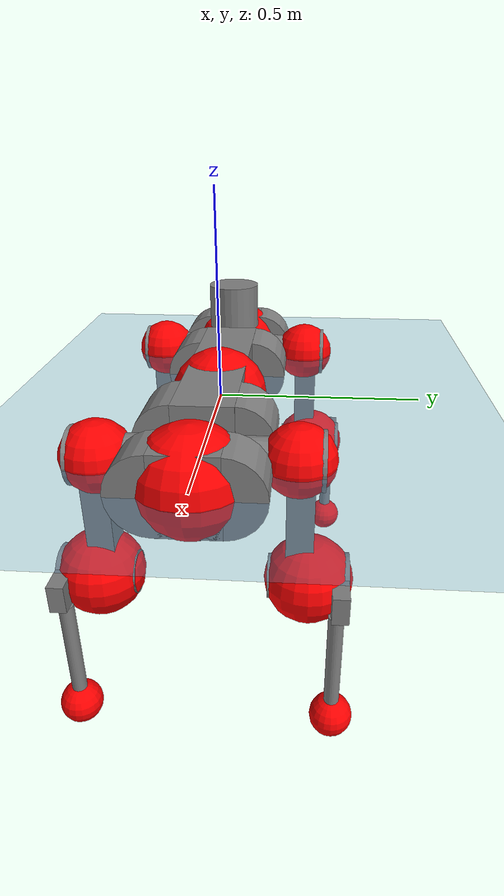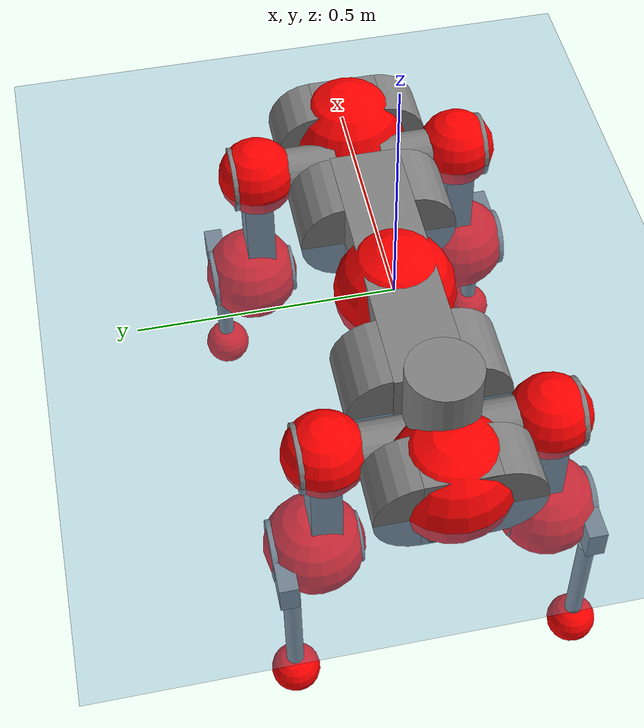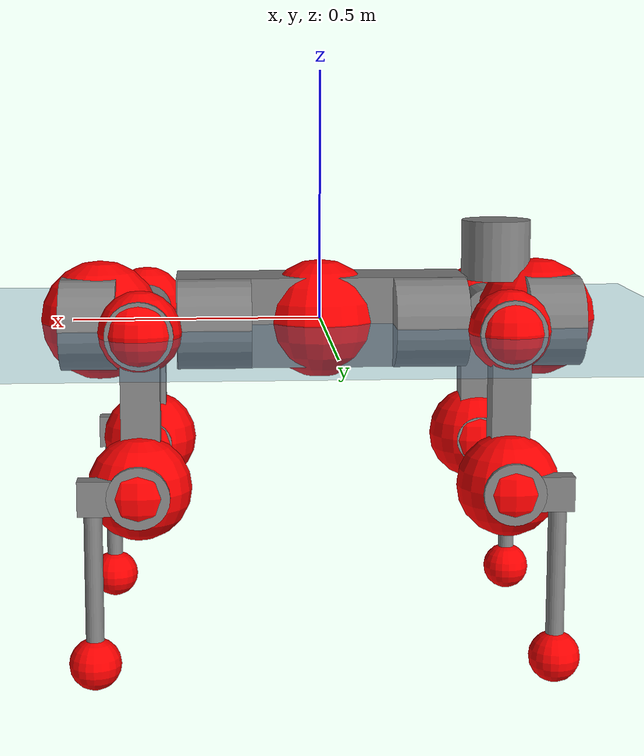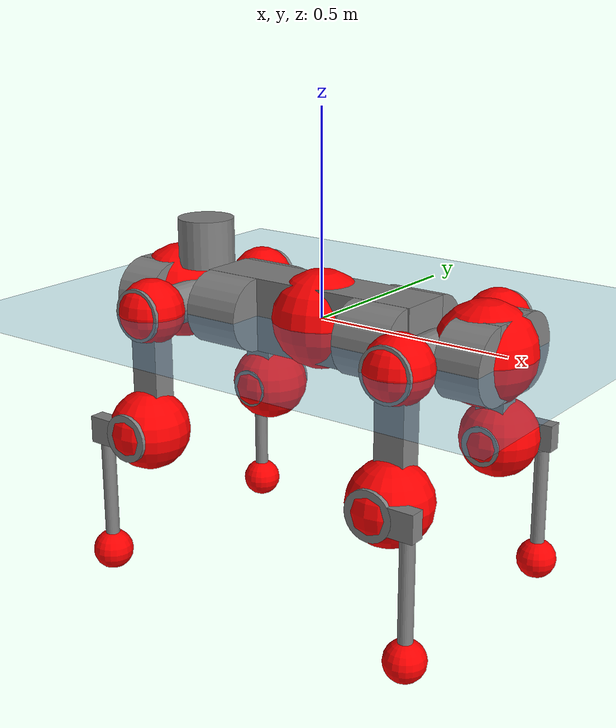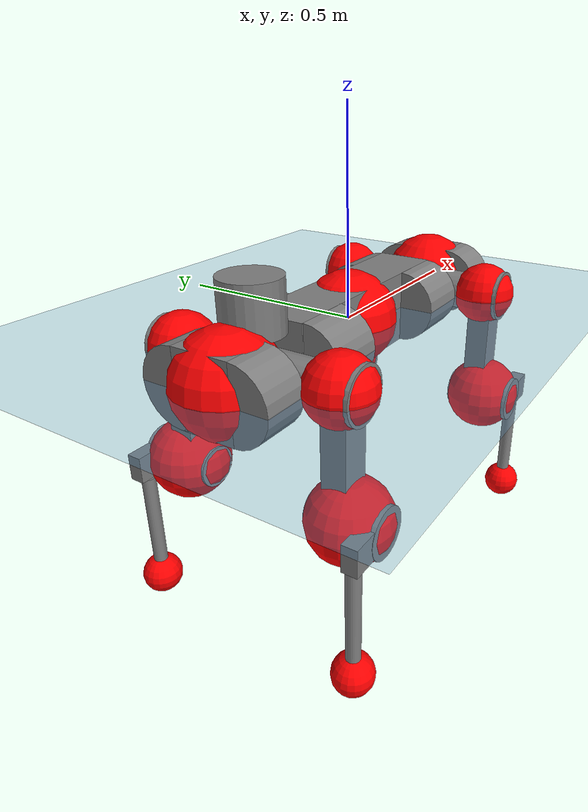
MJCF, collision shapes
<mujoco model="anymal_c">
  <compiler angle="radian" assetdir="assets" balanceinertia="true" inertiafromgeom="false"/>

  <option timestep="0.005" density="1.2" viscosity="2e-05"/>

  <size nkey="1"/>

  <visual>
    <quality shadowsize="8192"/>
    <map shadowclip="0.5"/>
  </visual>

  <default>
    <default class="/">
      <material specular="0" shininess="0.25"/>
      <geom contype="0" conaffinity="0" group="1" solref="-1000 -80"/>
      <site size="0.01 0.005 0.005" group="5"/>
      <general forcelimited="true" forcerange="-80 80" biastype="affine" gainprm="80" biasprm="0 -80 -2"/>
      <default class="anymal_c">
        <joint armature="0.01" damping="0.01" frictionloss="0.1"/>
        <default class="visual">
          <geom type="mesh" group="2"/>
          <default class="visual_zflip"/>
        </default>
        <default class="collision">
          <geom type="cylinder" group="3"/>
          <default class="foot">
            <geom size="0.03 0 0" type="sphere" condim="6" priority="1" friction="0.8 0.02 0.01" solimp="0.015 1 0.03"/>
          </default>
        </default>
      </default>
      <default class="reward_collision_sphere">
        <geom group="5" rgba="1 0 0 1"/>
      </default>
    </default>
  </default>

  <asset>
    <texture type="skybox" colorspace="auto" name="//unnamed_texture_0" builtin="gradient" rgb1="0.95 0.95 0.95" rgb2="0.95 0.95 0.95" width="100" height="600"/>
    <texture type="2d" colorspace="auto" name="texplane" builtin="checker" rgb1="0.345 0.575 0.748" rgb2="0.345 0.575 0.748" markrgb="1 1 1" width="512" height="512"/>
    <texture type="2d" colorspace="linear" name="base" file="base.png"/>
    <texture type="2d" colorspace="linear" name="top_shell" file="top_shell.png"/>
    <texture type="2d" colorspace="linear" name="bottom_shell" file="bottom_shell.png"/>
    <texture type="2d" colorspace="linear" name="remote" file="remote.png"/>
    <texture type="2d" colorspace="linear" name="hatch" file="hatch.png"/>
    <texture type="2d" colorspace="linear" name="handle" file="handle.png"/>
    <texture type="2d" colorspace="linear" name="face" file="face.png"/>
    <texture type="2d" colorspace="linear" name="battery" file="battery.png"/>
    <texture type="2d" colorspace="linear" name="lidar_cage" file="lidar_cage.png"/>
    <texture type="2d" colorspace="linear" name="depth_camera" file="depth_camera.png"/>
    <texture type="2d" colorspace="linear" name="wide_angle_camera" file="wide_angle_camera.png"/>
    <texture type="2d" colorspace="linear" name="lidar" file="lidar.png"/>
    <texture type="2d" colorspace="linear" name="drive" file="drive.png"/>
    <texture type="2d" colorspace="linear" name="hip_l" file="hip_l.png"/>
    <texture type="2d" colorspace="linear" name="shank_l" file="shank_l.png"/>
    <texture type="2d" colorspace="linear" name="foot" file="foot.png"/>
    <texture type="2d" colorspace="linear" name="thigh" file="thigh.png"/>
    <texture type="2d" colorspace="linear" name="shank_r" file="shank_r.png"/>
    <texture type="2d" colorspace="linear" name="hip_r" file="hip_r.png"/>
    <material name="MatPlane" class="/" texture="texplane" texuniform="true" texrepeat="2 2" specular="0.9" shininess="0.5"/>
    <material name="black_plastic" class="/" rgba="0.007 0.007 0.007 1"/>
    <material name="green" class="/" rgba="0.052 0.178 0.033 1"/>
    <material name="red" class="/" rgba="0.178 0.006 0.005 1"/>
    <material name="yellow" class="/" rgba="0.178 0.119 0.006 1"/>
    <material name="lwl" class="/" rgba="0.8 0.8 0.8 1"/>
    <material name="base" class="/" texture="base"/>
    <material name="top_shell" class="/" texture="top_shell"/>
    <material name="bottom_shell" class="/" texture="bottom_shell"/>
    <material name="hip_l" class="/" texture="hip_l"/>
    <material name="thigh" class="/" texture="thigh"/>
    <material name="shank_l" class="/" texture="shank_l"/>
    <material name="foot" class="/" texture="foot"/>
    <material name="hip_r" class="/" texture="hip_r"/>
    <material name="shank" class="/" texture="shank_r"/>
    <material name="hatch" class="/" texture="hatch"/>
    <material name="remote" class="/" texture="remote"/>
    <material name="handle" class="/" texture="handle"/>
    <material name="face" class="/" texture="face"/>
    <material name="depth_camera" class="/" texture="depth_camera"/>
    <material name="wide_angle_camera" class="/" texture="wide_angle_camera"/>
    <material name="battery" class="/" texture="battery"/>
    <material name="lidar_cage" class="/" texture="lidar_cage"/>
    <material name="lidar" class="/" texture="lidar"/>
    <material name="drive" class="/" texture="drive"/>
    <mesh name="base_0" class="/" file="base_0.obj"/>
    <mesh name="base_1" class="/" file="base_1.obj"/>
    <mesh name="base_2" class="/" file="base_2.obj"/>
    <mesh name="base_3" class="/" file="base_3.obj"/>
    <mesh name="base_4" class="/" file="base_4.obj"/>
    <mesh name="base_5" class="/" file="base_5.obj"/>
    <mesh name="top_shell" class="/" file="top_shell.obj"/>
    <mesh name="bottom_shell" class="/" file="bottom_shell.obj"/>
    <mesh name="remote" class="/" file="remote.obj"/>
    <mesh name="handle" class="/" file="handle.obj"/>
    <mesh name="face" class="/" file="face.obj"/>
    <mesh name="wide_angle_camera" class="/" file="wide_angle_camera.obj"/>
    <mesh name="depth_camera" class="/" file="depth_camera.obj"/>
    <mesh name="battery" class="/" file="battery.obj"/>
    <mesh name="lidar_cage" class="/" file="lidar_cage.obj"/>
    <mesh name="lidar" class="/" file="lidar.obj"/>
    <mesh name="drive" class="/" file="drive.obj"/>
    <mesh name="hip_l" class="/" file="hip_l.obj"/>
    <mesh name="thigh" class="/" file="thigh.obj"/>
    <mesh name="shank_l" class="/" file="shank_l.obj"/>
    <mesh name="foot" class="/" file="foot.obj"/>
    <mesh name="hip_r" class="/" file="hip_r.obj"/>
    <mesh name="hatch" class="/" file="hatch.obj"/>
    <mesh name="shank_r" class="/" file="shank_r.obj"/>
  </asset>

  <worldbody>
    <geom name="floor" class="/" size="100 100 0.125" type="plane" group="0" material="MatPlane"/>
    <light name="toplight_shadow" class="/" pos="0 0 5" dir="0.0990148 0.0990148 -0.990148" type="directional" ambient="0.04 0.04 0.04" diffuse="0.55 0.55 0.55" specular="0.12 0.12 0.12"/>
    <light name="toplight_fill" class="/" pos="0 0 5" dir="0.0990148 0.0990148 -0.990148" type="directional" castshadow="false" ambient="0.04 0.04 0.04" diffuse="0.3 0.3 0.3" specular="0.08 0.08 0.08"/>
    <body name="trunk" childclass="anymal_c" pos="0.000108575 -0.00177627 0.00043896" quat="1 3.36988e-07 4.46434e-07 7.85412e-07">
      <inertial pos="0.00130637 -0.00219046 0.0525179" quat="0.498455 0.510154 0.491616 0.499599" mass="18.6876" diaginertia="0.591416 0.557389 0.260834"/>
      <joint name="//unnamed_joint_0" type="free" armature="0" damping="0" frictionloss="0"/>
      <geom name="//unnamed_geom_1" class="visual" material="green" mesh="base_0"/>
      <geom name="//unnamed_geom_2" class="visual" material="yellow" mesh="base_1"/>
      <geom name="//unnamed_geom_3" class="visual" material="red" mesh="base_2"/>
      <geom name="//unnamed_geom_4" class="visual" material="black_plastic" mesh="base_3"/>
      <geom name="//unnamed_geom_5" class="visual" material="lwl" mesh="base_4"/>
      <geom name="//unnamed_geom_6" class="visual" material="base" mesh="base_5"/>
      <geom name="trunk_1" class="collision" size="0.290993 0.0702397 0.0903082" type="box"/>
      <geom name="trunk_2" class="collision" size="0.0903082 0.0727483" pos="0.214995 0.0685344 0" quat="0.707107 0 0.707107 0"/>
      <geom name="trunk_3" class="collision" size="0.0903082 0.0727483" pos="-0.214995 0.0685344 0" quat="0.707107 0 0.707107 0"/>
      <geom name="trunk_4" class="collision" size="0.0903082 0.0727483" pos="0.214995 -0.0685344 0" quat="0.707107 0 0.707107 0"/>
      <geom name="trunk_5" class="collision" size="0.0903082 0.0727483" pos="-0.214995 -0.0685344 0" quat="0.707107 0 0.707107 0"/>
      <geom name="//unnamed_geom_12" class="visual" material="top_shell" mesh="top_shell"/>
      <geom name="//unnamed_geom_13" class="visual" material="bottom_shell" mesh="bottom_shell"/>
      <geom name="//unnamed_geom_14" class="visual" material="remote" mesh="remote"/>
      <geom name="//unnamed_geom_15" class="visual" material="handle" mesh="handle"/>
      <geom name="//unnamed_geom_16" class="visual" pos="0.409725 0 0" quat="1 0 0 0" material="face" mesh="face"/>
      <geom name="trunk_6" class="collision" size="0.0551883 0.0702397 0.0903082" pos="0.464092 0 0" type="box"/>
      <geom name="//unnamed_geom_18" class="collision" size="0.0903082 0.0551883" pos="0.464092 0.0685344 0" quat="0.707107 0 0.707107 0"/>
      <geom name="//unnamed_geom_19" class="collision" size="0.0903082 0.0551883" pos="0.464092 -0.0685344 0" quat="0.707107 0 0.707107 0"/>
      <geom name="//unnamed_geom_20" class="visual" pos="0.456335 0 -0.03086" quat="0.965926 0 0.258819 0" material="depth_camera" mesh="depth_camera"/>
      <geom name="//unnamed_geom_21" class="visual" pos="0.507091 0 0.0156097" material="wide_angle_camera" mesh="wide_angle_camera"/>
      <geom name="//unnamed_geom_22" class="visual_zflip" pos="-0.409725 0 0" quat="0 0 0 1" material="face" mesh="face"/>
      <geom name="trunk_7" class="collision" size="0.0551883 0.0702397 0.0903082" pos="-0.464092 0 0" quat="0 0 0 1" type="box"/>
      <geom name="//unnamed_geom_24" class="collision" size="0.0903082 0.0551883" pos="-0.464092 -0.0685344 0" quat="0 -0.707107 0 0.707107"/>
      <geom name="//unnamed_geom_25" class="collision" size="0.0903082 0.0551883" pos="-0.464092 0.0685344 0" quat="0 -0.707107 0 0.707107"/>
      <geom name="//unnamed_geom_26" class="visual" pos="-0.456335 0 -0.03086" quat="0 -0.258819 0 0.965926" material="depth_camera" mesh="depth_camera"/>
      <geom name="//unnamed_geom_27" class="visual_zflip" pos="-0.507091 0 0.0156097" quat="0 0 0 1" material="wide_angle_camera" mesh="wide_angle_camera"/>
      <geom name="//unnamed_geom_28" class="visual" material="battery" mesh="battery"/>
      <geom name="//unnamed_geom_29" class="visual" pos="0 0.0747378 0.029879" quat="0.683013 -0.183013 0.183013 0.683013" material="depth_camera" mesh="depth_camera"/>
      <geom name="//unnamed_geom_30" class="visual" pos="0 -0.0747378 0.029879" quat="0.683013 0.183013 0.183013 -0.683013" material="depth_camera" mesh="depth_camera"/>
      <geom name="//unnamed_geom_31" class="visual" pos="-0.359807 0 0.0766407" quat="1 0 0 0" material="lidar_cage" mesh="lidar_cage"/>
      <geom name="trunk_8" class="collision" size="0.0702397 0.0602055" pos="-0.359807 0 0.139204"/>
      <geom name="//unnamed_geom_33" class="visual" pos="-0.359807 -3.70044e-06 0.148276" quat="0.707107 0 0 -0.707107" material="lidar" mesh="lidar"/>
      <geom name="//unnamed_geom_34" class="visual" pos="0.296445 0.101845 -1.09828e-09" quat="0.258819 0.965926 0 0" material="drive" mesh="drive"/>
      <geom name="//unnamed_geom_35" class="visual" pos="0.296445 -0.101845 1.09828e-09" quat="0.258819 -0.965926 0 0" material="drive" mesh="drive"/>
      <geom name="//unnamed_geom_36" class="visual" pos="-0.296445 0.101845 1.09828e-09" quat="0 0 0.965926 -0.258819" material="drive" mesh="drive"/>
      <geom name="//unnamed_geom_37" class="visual" pos="-0.296445 -0.101845 -1.09828e-09" quat="0 0 -0.965926 -0.258819" material="drive" mesh="drive"/>
      <geom name="//unnamed_geom_38" class="visual" pos="0.114664 0 0.0761193" quat="1 0 0 0" material="hatch" mesh="hatch"/>
      <geom name="//unnamed_geom_39" class="reward_collision_sphere" size="0.120411"/>
      <geom name="//unnamed_geom_40" class="reward_collision_sphere" size="0.120411" pos="0.444817 0 0"/>
      <geom name="//unnamed_geom_41" class="reward_collision_sphere" size="0.120411" pos="-0.444817 0 0"/>
      <site name="imu" pos="0.25408 0.0100009 0.0394103" size="0.0100342"/>
      <camera name="track" pos="0 -1.95812 0" quat="0.707107 0.707107 0 0" mode="trackcom"/>
      <camera name="ego_camera" pos="0.444817 0 -0.0417092" quat="-0.5 -0.5 0.5 0.5"/>
      <body name="LF_HIP" pos="0.297973 0.104996 0.00252365" quat="0.258753 0.965943 0.000288111 0.000828337">
        <inertial pos="0.0562155 -0.0145515 -0.00876594" quat="-0.127682 0.70917 -0.134377 0.680234" mass="2.74422" diaginertia="0.00551943 0.00429874 0.00407851"/>
        <joint name="LF_HAA" pos="0 0 0" axis="0.999999 0.00120083 0.00100379" range="-0.666893 0.487396" armature="0.00971657" damping="0" frictionloss="0.105738"/>
        <geom name="//unnamed_geom_42" class="visual" pos="0 -6.46066e-05 1.06116e-05" quat="0.258819 -0.965926 0 0" material="hip_l" mesh="hip_l"/>
        <geom name="//unnamed_geom_43" class="visual" pos="0.05921 -0.0716441 -0.0418347" quat="0.183013 -0.683013 0.683013 0.183013" material="drive" mesh="drive"/>
        <geom name="//unnamed_geom_44" class="collision" size="0.0501712 0.0702397" pos="0.05921 -0.0117094 -0.00720005" quat="-0.353553 -0.612372 0.612372 -0.353553"/>
        <body name="LF_THIGH" pos="0.0595727 -0.0689082 -0.0434268" quat="0.182638 -0.68313 0.682828 0.183636">
          <inertial pos="0.0320718 0.000668472 -0.256422" quat="0.99183 -0.00240668 -0.0877935 0.0925141" mass="3.10177" diaginertia="0.0288382 0.0270187 0.0052555"/>
          <joint name="LF_HFE" pos="0 0 0" axis="0.999958 -0.0047547 0.00789708" range="-3.15143 3.18921" armature="0.0110492" damping="0.00251829" frictionloss="0.0961581"/>
          <geom name="//unnamed_geom_45" class="visual" pos="0.000187399 2.95298e-07 0" quat="0.707107 0 0 -0.707107" material="thigh" mesh="thigh"/>
          <geom name="//unnamed_geom_46" class="collision" size="0.0652226 0.040137" pos="0.0395392 0 0" quat="0.5 0.5 -0.5 -0.5"/>
          <geom name="//unnamed_geom_47" class="collision" size="0.0376284 0.0301027 0.141798" pos="0.0296544 0 -0.147352" quat="0.707107 0 0 -0.707107" type="box"/>
          <geom name="//unnamed_geom_48" class="visual" pos="0.0991447 0 -0.297178" quat="1 0 0 0" material="drive" mesh="drive"/>
          <geom name="//unnamed_geom_49" class="collision" size="0.0501712 0.0702397" pos="0.029951 0 -0.297178" quat="0.707107 0 0.707107 0"/>
          <geom name="//unnamed_geom_50" class="reward_collision_sphere" size="0.080274" pos="0.024712 0 0"/>
          <body name="LF_SHANK" pos="0.100667 -0.00275503 -0.297181" quat="1 3.17316e-05 1.30766e-05 0.000167684">
            <inertial pos="0.00635409 -0.0599168 -0.0867684" quat="0.992947 -0.115847 -0.00105839 -0.0251819" mass="0.592616" diaginertia="0.00936805 0.00855942 0.00133152"/>
            <joint name="LF_KFE" pos="0 0 0" axis="1 0.000684137 -1.19186e-05" stiffness="0.000218185" range="-3.19296 3.13262" armature="0.00967278" damping="0.00935731" frictionloss="0.0993146"/>
            <geom name="//unnamed_geom_51" class="visual" pos="6.11069e-05 0.000325825 0" quat="0.707107 0 0 -0.707107" material="shank_l" mesh="shank_l"/>
            <geom name="LF_kfe_act" class="collision" size="0.0602055 0.0200685" pos="0.0197696 0 0" quat="0.5 0.5 -0.5 -0.5"/>
            <geom name="//unnamed_geom_53" class="collision" size="0.0576959 0.0338656 0.0190651" pos="0.0197696 -0.0562951 0" quat="0.5 0.5 -0.5 -0.5" type="box"/>
            <geom name="//unnamed_geom_54" class="visual" pos="0.0128997 -0.0860035 -0.352411" quat="0.382683 0 0 -0.92388" material="foot" mesh="foot"/>
            <geom name="LF_calf" class="collision" size="0.0175599 0.141736" pos="0.0128997 -0.0861085 -0.176206" quat="0.707107 0 0 -0.707107"/>
            <geom name="LF_foot" class="foot" size="0.0302659" pos="0.0128997 -0.0861085 -0.32895" quat="0.707107 0 0 -0.707107"/>
            <geom name="//unnamed_geom_57" class="reward_collision_sphere" size="0.100342" pos="-0.0494241 0 0"/>
            <geom name="//unnamed_geom_58" class="reward_collision_sphere" size="0.0501712" pos="0.0128997 -0.0861085 -0.32895"/>
            <site name="LF_foot" class="foot" pos="0.0128997 -0.0861085 -0.32895" quat="0.707107 0 0 -0.707107" size="0.0100342"/>
          </body>
        </body>
      </body>
      <body name="RF_HIP" pos="0.297507 -0.102887 0.00105258" quat="0.25882 -0.965926 4.63198e-05 1.09373e-05">
        <inertial pos="0.0570835 0.0142823 -0.00969079" quat="0.136515 0.677529 0.129609 0.710999" mass="2.74463" diaginertia="0.00563632 0.00430723 0.00417901"/>
        <joint name="RF_HAA" pos="0 0 0" axis="0.999974 0.00344924 0.00637638" range="-0.4956 0.723002" armature="0.00948005" damping="0.00424495" frictionloss="0.0955996"/>
        <geom name="//unnamed_geom_59" class="visual" pos="0 6.46061e-05 1.06116e-05" quat="0.258819 0.965926 0 0" material="hip_r" mesh="hip_r"/>
        <geom name="//unnamed_geom_60" class="visual" pos="0.05921 0.0716441 -0.0418347" quat="0.183013 0.683013 0.683013 -0.183013" material="drive" mesh="drive"/>
        <geom name="//unnamed_geom_61" class="collision" size="0.0501712 0.0702397" pos="0.05921 0.0117094 -0.00720005" quat="-0.353553 0.612372 0.612372 0.353553"/>
        <body name="RF_THIGH" pos="0.0620039 0.0735599 -0.0436936" quat="0.182972 0.683012 0.683021 -0.183023">
          <inertial pos="0.0307342 -0.00267214 -0.256477" quat="0.99257 -0.00653673 -0.0833275 0.0884233" mass="3.23673" diaginertia="0.0294768 0.0276227 0.00534471"/>
          <joint name="RF_HFE" pos="0 0 0" axis="0.999994 0.00342521 0.000914618" range="-3.19428 3.13627" armature="0.0101784" damping="0.00471152" frictionloss="0.100728"/>
          <geom name="//unnamed_geom_62" class="visual" pos="0.000187399 2.95298e-07 0" quat="0.707107 0 0 -0.707107" material="thigh" mesh="thigh"/>
          <geom name="//unnamed_geom_63" class="collision" size="0.0652226 0.040137" pos="0.0395392 0 0" quat="0.5 0.5 0.5 0.5"/>
          <geom name="//unnamed_geom_64" class="collision" size="0.0376284 0.0301027 0.141798" pos="0.0296544 0 -0.147352" quat="0.707107 0 0 0.707107" type="box"/>
          <geom name="//unnamed_geom_65" class="visual" pos="0.0991447 0 -0.297178" quat="1 0 0 0" material="drive" mesh="drive"/>
          <geom name="//unnamed_geom_66" class="collision" size="0.0501712 0.0702397" pos="0.029951 0 -0.297178" quat="0.707107 0 0.707107 0"/>
          <geom name="//unnamed_geom_67" class="reward_collision_sphere" size="0.080274" pos="0.024712 0 0"/>
          <body name="RF_SHANK" pos="0.0965739 -0.000267701 -0.297931" quat="0.999999 -0.00078037 0.000389167 0.000768141">
            <inertial pos="0.00484204 0.0601053 -0.0826453" quat="0.993046 0.114266 -0.00237326 0.0282473" mass="0.598505" diaginertia="0.00949385 0.00833991 0.00136321"/>
            <joint name="RF_KFE" pos="0 0 0" axis="0.999898 0.00911219 -0.0109968" range="-3.15258 3.13054" armature="0.0112562" damping="0.0223774" frictionloss="0.0892142"/>
            <geom name="//unnamed_geom_68" class="visual" pos="6.11065e-05 -0.000325824 0" quat="0.707107 0 0 0.707107" material="shank" mesh="shank_r"/>
            <geom name="RF_kfe_act" class="collision" size="0.0602055 0.0200685" pos="0.0197696 0 0" quat="0.5 0.5 0.5 0.5"/>
            <geom name="//unnamed_geom_70" class="collision" size="0.0576959 0.0338656 0.0190651" pos="0.0197696 0.0562951 0" quat="0.5 0.5 0.5 0.5" type="box"/>
            <geom name="//unnamed_geom_71" class="visual" pos="0.0128997 0.0860035 -0.352411" quat="0.382683 0 0 0.92388" material="foot" mesh="foot"/>
            <geom name="RF_calf" class="collision" size="0.0175599 0.141736" pos="0.0128997 0.0861085 -0.176206" quat="0.707107 0 0 0.707107"/>
            <geom name="RF_foot" class="foot" size="0.0285092" pos="0.0128997 0.0861085 -0.32895" quat="0.707107 0 0 0.707107"/>
            <geom name="//unnamed_geom_74" class="reward_collision_sphere" size="0.100342" pos="-0.0494241 0 0"/>
            <geom name="//unnamed_geom_75" class="reward_collision_sphere" size="0.0501712" pos="0.0128997 0.0861085 -0.32895"/>
            <site name="RF_foot" class="foot" pos="0.0128997 0.0861085 -0.32895" quat="0.707107 0 0 0.707107" size="0.0100342"/>
          </body>
        </body>
      </body>
      <body name="LH_HIP" pos="-0.296707 0.101264 -0.00120507" quat="0.000154821 0.00011325 0.966027 -0.258441">
        <inertial pos="0.0557976 0.0126785 -0.00853938" quat="0.134991 0.68136 0.123397 0.708731" mass="2.75053" diaginertia="0.00549913 0.00438805 0.0040379"/>
        <joint name="LH_HAA" pos="0 0 0" axis="0.999984 -0.000898337 0.00556151" stiffness="0.0013613" range="-0.509311 0.736808" armature="0.0101745" damping="0.0129245" frictionloss="0.0969079"/>
        <geom name="//unnamed_geom_76" class="visual" pos="0 6.46061e-05 1.06116e-05" quat="-0.258819 -0.965926 0 0" material="hip_r" mesh="hip_r"/>
        <geom name="//unnamed_geom_77" class="visual" pos="0.05921 0.0716441 -0.0418347" quat="0.183013 0.683013 0.683013 -0.183013" material="drive" mesh="drive"/>
        <geom name="//unnamed_geom_78" class="collision" size="0.0501712 0.0702397" pos="0.05921 0.0117094 -0.00720005" quat="-0.353553 0.612372 0.612372 0.353553"/>
        <body name="LH_THIGH" pos="0.0573888 0.070778 -0.04567" quat="0.182878 0.682921 0.683061 -0.183306">
          <inertial pos="0.0302089 -0.000190949 -0.258588" quat="0.992892 -0.00519617 -0.0814531 0.08663" mass="3.16932" diaginertia="0.0286028 0.0263967 0.00507429"/>
          <joint name="LH_HFE" pos="0 0 0" axis="0.999999 -0.00128208 -0.000106861" range="-3.17963 3.15368" armature="0.0103871" damping="0" frictionloss="0.0984159"/>
          <geom name="//unnamed_geom_79" class="visual" pos="0.000187399 2.95298e-07 0" quat="0.707107 0 0 -0.707107" material="thigh" mesh="thigh"/>
          <geom name="//unnamed_geom_80" class="collision" size="0.0652226 0.040137" pos="0.0395392 0 0" quat="0.5 0.5 -0.5 -0.5"/>
          <geom name="//unnamed_geom_81" class="collision" size="0.0376284 0.0301027 0.141798" pos="0.0296544 0 -0.147352" quat="0.707107 0 0 -0.707107" type="box"/>
          <geom name="//unnamed_geom_82" class="visual" pos="0.0991447 0 -0.297178" quat="1 0 0 0" material="drive" mesh="drive"/>
          <geom name="//unnamed_geom_83" class="collision" size="0.0501712 0.0702397" pos="0.029951 0 -0.297178" quat="0.707107 0 0.707107 0"/>
          <geom name="//unnamed_geom_84" class="reward_collision_sphere" size="0.080274" pos="0.024712 0 0"/>
          <body name="LH_SHANK" pos="0.0982484 -0.00268694 -0.298695" quat="1 -0.00018349 0.00014254 -0.000251412">
            <inertial pos="0.00495921 0.0598395 -0.0836768" quat="0.992943 0.115477 0.00100256 0.0269768" mass="0.603997" diaginertia="0.00994001 0.00831596 0.00139169"/>
            <joint name="LH_KFE" pos="0 0 0" axis="0.99992 0.0126294 0.00113117" range="-3.09229 3.10633" armature="0.0101605" damping="0.00915013" frictionloss="0.101218"/>
            <geom name="//unnamed_geom_85" class="visual" pos="6.11065e-05 -0.000325824 0" quat="-0.707107 0 0 -0.707107" material="shank" mesh="shank_r"/>
            <geom name="LH_kfe_act" class="collision" size="0.0602055 0.0200685" pos="0.0197696 0 0" quat="0.5 0.5 -0.5 -0.5"/>
            <geom name="//unnamed_geom_87" class="collision" size="0.0576959 0.0338656 0.0190651" pos="0.0197696 0.0562951 0" quat="0.5 0.5 -0.5 -0.5" type="box"/>
            <geom name="//unnamed_geom_88" class="visual" pos="0.0128997 0.0860035 -0.352411" quat="-0.382683 0 0 -0.92388" material="foot" mesh="foot"/>
            <geom name="LH_calf" class="collision" size="0.0175599 0.141736" pos="0.0128997 0.0861085 -0.176206" quat="0.707107 0 0 -0.707107"/>
            <geom name="LH_foot" class="foot" size="0.0309033" pos="0.0128997 0.0861085 -0.32895" quat="0.707107 0 0 -0.707107"/>
            <geom name="//unnamed_geom_91" class="reward_collision_sphere" size="0.100342" pos="-0.0494241 0 0"/>
            <geom name="//unnamed_geom_92" class="reward_collision_sphere" size="0.0501712" pos="0.0128997 0.0861085 -0.32895"/>
            <site name="LH_foot" class="foot" pos="0.0128997 0.0861085 -0.32895" quat="0.707107 0 0 -0.707107" size="0.0100342"/>
          </body>
        </body>
      </body>
      <body name="RH_HIP" pos="-0.297461 -0.100288 0.000911108" quat="0.000555755 -0.000738657 -0.965969 -0.258657">
        <inertial pos="0.0549796 -0.0128943 -0.00991699" quat="-0.130126 0.710001 -0.13083 0.679595" mass="2.83928" diaginertia="0.00566923 0.00439948 0.00420465"/>
        <joint name="RH_HAA" pos="0 0 0" axis="0.999946 -0.00742701 0.00727136" range="-0.721348 0.442768" armature="0.0100941" damping="0.0136768" frictionloss="0.101745"/>
        <geom name="//unnamed_geom_93" class="visual" pos="0 -6.46066e-05 1.06116e-05" quat="-0.258819 0.965926 0 0" material="hip_l" mesh="hip_l"/>
        <geom name="//unnamed_geom_94" class="visual" pos="0.05921 -0.0716441 -0.0418347" quat="-0.183013 0.683013 -0.683013 -0.183013" material="drive" mesh="drive"/>
        <geom name="//unnamed_geom_95" class="collision" size="0.0501712 0.0702397" pos="0.05921 -0.0117094 -0.00720005" quat="0.353553 0.612372 -0.612372 0.353553"/>
        <body name="RH_THIGH" pos="0.0596435 -0.0693309 -0.0436802" quat="-0.182489 0.683242 -0.682617 -0.184155">
          <inertial pos="0.0305196 -0.00251548 -0.255314" quat="0.993253 -0.00748156 -0.0825921 0.0810664" mass="3.09748" diaginertia="0.0285083 0.0267957 0.00512532"/>
          <joint name="RH_HFE" pos="0 0 0" axis="0.99993 0.010686 0.0050324" range="-3.15352 3.15453" armature="0.00973387" damping="0.0102989" frictionloss="0.0975664"/>
          <geom name="//unnamed_geom_96" class="visual" pos="0.000187399 2.95298e-07 0" quat="0.707107 0 0 -0.707107" material="thigh" mesh="thigh"/>
          <geom name="//unnamed_geom_97" class="collision" size="0.0652226 0.040137" pos="0.0395392 0 0" quat="0.5 0.5 0.5 0.5"/>
          <geom name="//unnamed_geom_98" class="collision" size="0.0376284 0.0301027 0.141798" pos="0.0296544 0 -0.147352" quat="0.707107 0 0 0.707107" type="box"/>
          <geom name="//unnamed_geom_99" class="visual" pos="0.0991447 0 -0.297178" quat="1 0 0 0" material="drive" mesh="drive"/>
          <geom name="//unnamed_geom_100" class="collision" size="0.0501712 0.0702397" pos="0.029951 0 -0.297178" quat="0.707107 0 0.707107 0"/>
          <geom name="//unnamed_geom_101" class="reward_collision_sphere" size="0.080274" pos="0.024712 0 0"/>
          <body name="RH_SHANK" pos="0.0961382 -0.000565865 -0.297354" quat="1 0.000257147 9.0025e-06 -7.76415e-05">
            <inertial pos="0.00809958 -0.0598943 -0.0831019" quat="0.993177 -0.11427 -0.00378403 -0.0229821" mass="0.588135" diaginertia="0.00985223 0.00838962 0.00136146"/>
            <joint name="RH_KFE" pos="0 0 0" axis="0.999973 -0.00349248 0.00653507" range="-3.16441 3.1859" armature="0.0088184" damping="0.00862777" frictionloss="0.0987287"/>
            <geom name="//unnamed_geom_102" class="visual" pos="6.11069e-05 0.000325825 0" quat="0.707107 0 0 -0.707107" material="shank_l" mesh="shank_l"/>
            <geom name="RH_kfe_act" class="collision" size="0.0602055 0.0200685" pos="0.0197696 0 0" quat="0.5 0.5 0.5 0.5"/>
            <geom name="//unnamed_geom_104" class="collision" size="0.0576959 0.0338656 0.0190651" pos="0.0197696 -0.0562951 0" quat="0.5 0.5 0.5 0.5" type="box"/>
            <geom name="//unnamed_geom_105" class="visual" pos="0.0128997 -0.0860035 -0.352411" quat="0.382683 0 0 -0.92388" material="foot" mesh="foot"/>
            <geom name="RH_calf" class="collision" size="0.0175599 0.141736" pos="0.0128997 -0.0861085 -0.176206" quat="0.707107 0 0 0.707107"/>
            <geom name="RH_foot" class="foot" size="0.0294292" pos="0.0128997 -0.0861085 -0.32895" quat="0.707107 0 0 0.707107"/>
            <geom name="//unnamed_geom_108" class="reward_collision_sphere" size="0.100342" pos="-0.0494241 0 0"/>
            <geom name="//unnamed_geom_109" class="reward_collision_sphere" size="0.0501712" pos="0.0128997 -0.0861085 -0.32895"/>
            <site name="RH_foot" class="foot" pos="0.0128997 -0.0861085 -0.32895" quat="0.707107 0 0 0.707107" size="0.0100342"/>
          </body>
        </body>
      </body>
    </body>
  </worldbody>

  <contact>
    <pair class="/" geom1="floor" geom2="LF_foot" name="//unnamed_contact_0"/>
    <pair class="/" geom1="floor" geom2="RF_foot" name="//unnamed_contact_1"/>
    <pair class="/" geom1="floor" geom2="LH_foot" name="//unnamed_contact_2"/>
    <pair class="/" geom1="floor" geom2="RH_foot" name="//unnamed_contact_3"/>
  </contact>

  <actuator>
    <general name="LF_HAA" class="/" joint="LF_HAA" forcerange="-88.5886 88.5886" gainprm="85.0938" biasprm="0 -85.0938 -2.01296"/>
    <general name="LF_HFE" class="/" joint="LF_HFE" forcerange="-78.0768 78.0768" gainprm="85.0938" biasprm="0 -85.0938 -2.01296"/>
    <general name="LF_KFE" class="/" joint="LF_KFE" forcerange="-83.3626 83.3626" gainprm="85.0938" biasprm="0 -85.0938 -2.01296"/>
    <general name="RF_HAA" class="/" joint="RF_HAA" forcerange="-88.6173 88.6173" gainprm="85.0938" biasprm="0 -85.0938 -2.01296"/>
    <general name="RF_HFE" class="/" joint="RF_HFE" forcerange="-89.596 89.596" gainprm="85.0938" biasprm="0 -85.0938 -2.01296"/>
    <general name="RF_KFE" class="/" joint="RF_KFE" forcerange="-84.2789 84.2789" gainprm="85.0938" biasprm="0 -85.0938 -2.01296"/>
    <general name="LH_HAA" class="/" joint="LH_HAA" forcerange="-81.9579 81.9579" gainprm="85.0938" biasprm="0 -85.0938 -2.01296"/>
    <general name="LH_HFE" class="/" joint="LH_HFE" forcerange="-78.0744 78.0744" gainprm="85.0938" biasprm="0 -85.0938 -2.01296"/>
    <general name="LH_KFE" class="/" joint="LH_KFE" forcerange="-81.4712 81.4712" gainprm="85.0938" biasprm="0 -85.0938 -2.01296"/>
    <general name="RH_HAA" class="/" joint="RH_HAA" forcerange="-72.7829 72.7829" gainprm="85.0938" biasprm="0 -85.0938 -2.01296"/>
    <general name="RH_HFE" class="/" joint="RH_HFE" forcerange="-80.6167 80.6167" gainprm="85.0938" biasprm="0 -85.0938 -2.01296"/>
    <general name="RH_KFE" class="/" joint="RH_KFE" forcerange="-80.2033 80.2033" gainprm="85.0938" biasprm="0 -85.0938 -2.01296"/>
  </actuator>

  <sensor>
    <gyro site="imu" name="imu_angular_velocity"/>
    <velocimeter site="imu" name="imu_linear_velocity"/>
    <framelinvel objtype="site" objname="LF_foot" name="LF_foot_global_linear_velocity"/>
    <framelinvel objtype="site" objname="RF_foot" name="RF_foot_global_linear_velocity"/>
    <framelinvel objtype="site" objname="LH_foot" name="LH_foot_global_linear_velocity"/>
    <framelinvel objtype="site" objname="RH_foot" name="RH_foot_global_linear_velocity"/>
  </sensor>

  <keyframe>
    <key name="home" qpos="0 0 0.55 1 0 0 0 0 0.4 -0.8 0 -0.4 0.8 0 -0.4 0.8 0 0.4 -0.8"/>
  </keyframe>
</mujoco>
